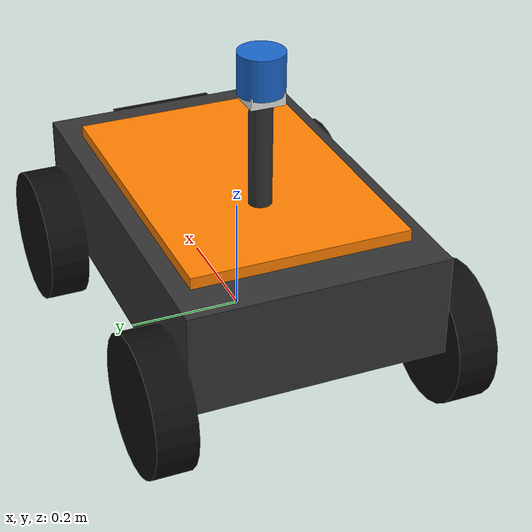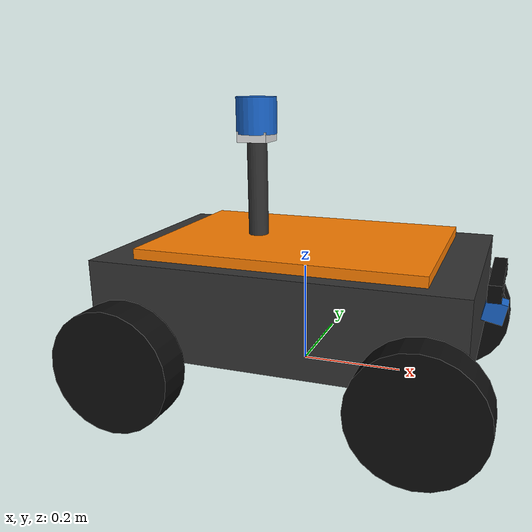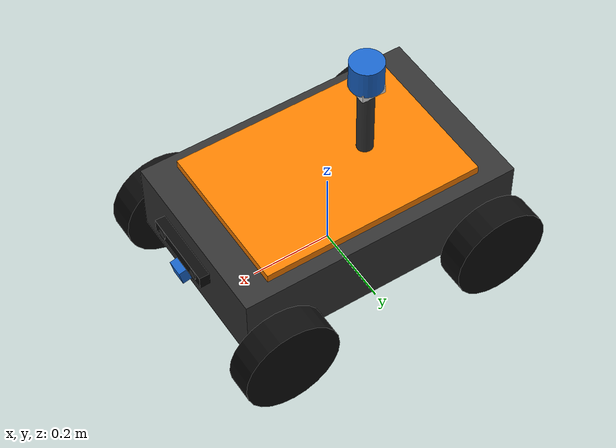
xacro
<?xml version="1.0"?>
<robot name="robot" xmlns:xacro="http://www.ros.org/wiki/xacro">

  <!-- ═══════════════════════════════════════════
       MATERIALS
  ═══════════════════════════════════════════ -->
  <material name="dark_grey"><color rgba="0.2 0.2 0.2 1"/></material>
  <material name="orange">   <color rgba="1.0 0.5 0.0 1"/></material>
  <material name="black">    <color rgba="0.05 0.05 0.05 1"/></material>
  <material name="white">    <color rgba="0.9 0.9 0.9 1"/></material>
  <material name="blue">     <color rgba="0.1 0.4 0.8 1"/></material>
  <material name="green">    <color rgba="0.1 0.8 0.1 1"/></material>

  <!-- ═══════════════════════════════════════════
       BASE
       base_footprint  →  base_link (body box)
  ═══════════════════════════════════════════ -->
  <link name="base_footprint"/>

  <joint name="base_joint" type="fixed">
    <parent link="base_footprint"/>
    <child  link="base_link"/>
    <origin xyz="0 0 0.15" rpy="0 0 0"/>
  </joint>

  <link name="base_link">
    <visual>
      <geometry><box size="0.7 0.45 0.18"/></geometry>
      <material name="dark_grey"/>
    </visual>
    <collision>
      <geometry><box size="0.7 0.45 0.18"/></geometry>
    </collision>
    <inertial>
      <mass value="15"/>
      <origin xyz="0 0 0" rpy="0 0 0"/>
      <inertia ixx="0.3" iyy="0.5" izz="0.6"
               ixy="0"   ixz="0"   iyz="0"/>
    </inertial>
  </link>

  <!-- orange top panel (visual only) -->
  <link name="top_panel">
    <visual>
      <geometry><box size="0.55 0.38 0.02"/></geometry>
      <material name="orange"/>
    </visual>
    <inertial>
      <mass value="0.5"/>
      <origin xyz="0 0 0" rpy="0 0 0"/>
      <inertia ixx="0.01" iyy="0.01" izz="0.01"
               ixy="0"    ixz="0"    iyz="0"/>
    </inertial>
  </link>
  <joint name="top_panel_joint" type="fixed">
    <parent link="base_link"/>
    <child  link="top_panel"/>
    <origin xyz="0 0 0.1" rpy="0 0 0"/>
  </joint>

  <!-- vertical mast (lidar + gps sit on top) -->
  <link name="mast_link">
    <visual>
      <geometry><cylinder radius="0.02" length="0.25"/></geometry>
      <material name="dark_grey"/>
    </visual>
    <collision>
      <geometry><cylinder radius="0.02" length="0.25"/></geometry>
    </collision>
    <inertial>
      <mass value="0.3"/>
      <origin xyz="0 0 0" rpy="0 0 0"/>
      <inertia ixx="0.001" iyy="0.001" izz="0.001"
               ixy="0"     ixz="0"     iyz="0"/>
    </inertial>
  </link>
  <joint name="mast_joint" type="fixed">
    <parent link="base_link"/>
    <child  link="mast_link"/>
    <origin xyz="-0.1 0 0.215" rpy="0 0 0"/>
  </joint>

  <xacro:macro name="wheel" params="name x y">

    <link name="${name}">
      <visual>
        <origin xyz="0 0 0" rpy="1.5707 0 0"/>
        <geometry><cylinder radius="0.12" length="0.07"/></geometry>
        <material name="black"/>
      </visual>
      <collision>
        <origin xyz="0 0 0" rpy="1.5707 0 0"/>
        <geometry><cylinder radius="0.12" length="0.07"/></geometry>
      </collision>
      <inertial>
        <mass value="1.5"/>
        <origin xyz="0 0 0" rpy="0 0 0"/>
        <inertia ixx="0.012" iyy="0.012" izz="0.021"
                 ixy="0"     ixz="0"     iyz="0"/>
      </inertial>
    </link>

    <joint name="${name}_joint" type="continuous">
      <parent link="base_link"/>
      <child  link="${name}"/>
      <origin xyz="${x} ${y} -0.1" rpy="0 0 0"/>
      <axis xyz="0 1 0"/>
      <dynamics damping="0.05" friction="0.0"/>
    </joint>

    <!-- Gazebo friction / contact for this wheel -->
    <gazebo reference="${name}">
      <mu1>1.5</mu1>
      <mu2>1.5</mu2>
      <kp>1e6</kp>
      <kd>10.0</kd>
      <minDepth>0.001</minDepth>
      <material>Gazebo/DarkGrey</material>
    </gazebo>

  </xacro:macro>

  <!-- Instantiate all 4 wheels -->
  <xacro:wheel name="front_left_wheel"  x=" 0.28" y=" 0.26"/>
  <xacro:wheel name="front_right_wheel" x=" 0.28" y="-0.26"/>
  <xacro:wheel name="rear_left_wheel"   x="-0.28" y=" 0.26"/>
  <xacro:wheel name="rear_right_wheel"  x="-0.28" y="-0.26"/>

  <!-- ═══════════════════════════════════════════
       LIDAR
  ═══════════════════════════════════════════ -->
  <link name="lidar_link">
    <visual>
      <geometry><cylinder radius="0.04" length="0.07"/></geometry>
      <material name="blue"/>
    </visual>
    <collision>
      <geometry><cylinder radius="0.04" length="0.07"/></geometry>
    </collision>
    <inertial>
      <mass value="0.2"/>
      <origin xyz="0 0 0" rpy="0 0 0"/>
      <inertia ixx="0.001" iyy="0.001" izz="0.001"
               ixy="0"     ixz="0"     iyz="0"/>
    </inertial>
  </link>
  <joint name="lidar_joint" type="fixed">
    <parent link="mast_link"/>
    <child  link="lidar_link"/>
    <origin xyz="0 0 0.13" rpy="0 0 0"/>
  </joint>

  <gazebo reference="lidar_link">
    <sensor type="ray" name="lidar_sensor">
      <always_on>true</always_on>
      <visualize>false</visualize>
      <update_rate>10</update_rate>
      <ray>
        <scan>
          <horizontal>
            <samples>360</samples>
            <resolution>1</resolution>
            <min_angle>-3.14159</min_angle>
            <max_angle> 3.14159</max_angle>
          </horizontal>
        </scan>
        <range>
          <min>0.15</min><max>15.0</max>
          <resolution>0.01</resolution>
        </range>
        <noise>
          <type>gaussian</type>
          <mean>0.0</mean><stddev>0.01</stddev>
        </noise>
      </ray>
      <plugin name="lidar_plugin"
              filename="libgazebo_ros_ray_sensor.so">
        <ros>
          <remapping>~/out:=/scan</remapping>
        </ros>
        <output_type>sensor_msgs/LaserScan</output_type>
        <frame_name>lidar_link</frame_name>
      </plugin>
    </sensor>
  </gazebo>

  <!-- ═══════════════════════════════════════════
       IMU
  ═══════════════════════════════════════════ -->
  <link name="imu_link">
    <visual>
      <geometry><box size="0.04 0.04 0.01"/></geometry>
      <material name="green"/>
    </visual>
    <collision>
      <geometry><box size="0.04 0.04 0.01"/></geometry>
    </collision>
    <inertial>
      <mass value="0.05"/>
      <origin xyz="0 0 0" rpy="0 0 0"/>
      <inertia ixx="0.0001" iyy="0.0001" izz="0.0001"
               ixy="0"      ixz="0"      iyz="0"/>
    </inertial>
  </link>
  <joint name="imu_joint" type="fixed">
    <parent link="base_link"/>
    <child  link="imu_link"/>
    <origin xyz="0 0 0.05" rpy="0 0 0"/>
  </joint>

  <gazebo reference="imu_link">
    <sensor name="imu_sensor" type="imu">
      <always_on>true</always_on>
      <update_rate>100</update_rate>
      <plugin name="imu_plugin"
              filename="libgazebo_ros_imu_sensor.so">
        <ros>
          <remapping>~/out:=/imu/data</remapping>
        </ros>
        <initial_orientation_as_reference>false
        </initial_orientation_as_reference>
        <frame_name>imu_link</frame_name>
      </plugin>
    </sensor>
  </gazebo>

  <!-- ═══════════════════════════════════════════
       GPS
  ═══════════════════════════════════════════ -->
  <link name="gps_link">
    <visual>
      <geometry><box size="0.06 0.06 0.02"/></geometry>
      <material name="white"/>
    </visual>
    <collision>
      <geometry><box size="0.06 0.06 0.02"/></geometry>
    </collision>
    <inertial>
      <mass value="0.1"/>
      <origin xyz="0 0 0" rpy="0 0 0"/>
      <inertia ixx="0.0001" iyy="0.0001" izz="0.0001"
               ixy="0"      ixz="0"      iyz="0"/>
    </inertial>
  </link>
  <joint name="gps_joint" type="fixed">
    <parent link="mast_link"/>
    <child  link="gps_link"/>
    <origin xyz="0 0 0.09" rpy="0 0 0"/>
  </joint>

  <gazebo reference="gps_link">
    <sensor name="gps_sensor" type="gps">
      <always_on>true</always_on>
      <update_rate>1</update_rate>
      <plugin name="gps_plugin"
              filename="libgazebo_ros_gps_sensor.so">
        <ros>
          <remapping>~/out:=/gps/fix</remapping>
        </ros>
        <frame_name>gps_link</frame_name>
      </plugin>
    </sensor>
  </gazebo>

  <!-- ═══════════════════════════════════════════
       STEREO CAMERAS
  ═══════════════════════════════════════════ -->
  <link name="stereo_bar_link">
    <visual>
      <geometry><box size="0.025 0.19 0.032"/></geometry>
      <material name="black"/>
    </visual>
    <collision>
      <geometry><box size="0.05 0.22 0.05"/></geometry>
    </collision>
    <inertial>
      <mass value="0.15"/>
      <origin xyz="0 0 0" rpy="0 0 0"/>
      <inertia ixx="0.001" iyy="0.001" izz="0.001"
               ixy="0"     ixz="0"     iyz="0"/>
    </inertial>
  </link>
  <joint name="stereo_bar_joint" type="fixed">
    <parent link="base_link"/>
    <child  link="stereo_bar_link"/>
    <origin xyz="0.375 0 0.06" rpy="0 0 0"/>
  </joint>

  <link name="left_camera_link">
    <visual>
      <origin xyz="0.013 0 0" rpy="0 1.5707 0"/>
      <geometry><cylinder radius="0.013" length="0.002"/></geometry>
      <material name="dark_grey"/>
    </visual>
    <collision>
      <origin xyz="0.013 0 0" rpy="0 1.5707 0"/>
      <geometry><cylinder radius="0.013" length="0.002"/></geometry>
    </collision>
    <inertial>
      <mass value="0.02"/>
      <origin xyz="0 0 0" rpy="0 0 0"/>
      <inertia ixx="0.0001" iyy="0.0001" izz="0.0001"
               ixy="0"      ixz="0"      iyz="0"/>
    </inertial>
  </link>
  <joint name="left_camera_joint" type="fixed">
    <parent link="stereo_bar_link"/>
    <child  link="left_camera_link"/>
    <origin xyz="0 0.065 0" rpy="0 0 0"/>
  </joint>

  <link name="right_camera_link">
    <visual>
      <origin xyz="0.013 0 0" rpy="0 1.5707 0"/>
      <geometry><cylinder radius="0.013" length="0.002"/></geometry>
      <material name="dark_grey"/>
    </visual>
    <collision>
      <origin xyz="0.013 0 0" rpy="0 1.5707 0"/>
      <geometry><cylinder radius="0.013" length="0.002"/></geometry>
    </collision>
    <inertial>
      <mass value="0.02"/>
      <origin xyz="0 0 0" rpy="0 0 0"/>
      <inertia ixx="0.0001" iyy="0.0001" izz="0.0001"
               ixy="0"      ixz="0"      iyz="0"/>
    </inertial>
  </link>
  <joint name="right_camera_joint" type="fixed">
    <parent link="stereo_bar_link"/>
    <child  link="right_camera_link"/>
    <origin xyz="0 -0.065 0" rpy="0 0 0"/>
  </joint>

  <gazebo reference="left_camera_link">
    <sensor type="camera" name="left_camera">
      <always_on>true</always_on>
      <update_rate>15</update_rate>
      <camera>
        <horizontal_fov>1.8</horizontal_fov>
        <image>
          <width>1280</width><height>720</height>
          <format>R8G8B8</format>
        </image>
        <clip><near>0.1</near><far>100</far></clip>
      </camera>
      <plugin name="left_camera_plugin"
              filename="libgazebo_ros_camera.so">
        <ros>
          <remapping>image_raw:=/stereo/left/image_raw</remapping>
          <remapping>camera_info:=/stereo/left/camera_info</remapping>
        </ros>
        <frame_name>left_camera_link</frame_name>
      </plugin>
    </sensor>
  </gazebo>

  <gazebo reference="right_camera_link">
    <sensor type="camera" name="right_camera">
      <always_on>true</always_on>
      <update_rate>15</update_rate>
      <camera>
        <horizontal_fov>1.8</horizontal_fov>
        <image>
          <width>1280</width><height>720</height>
          <format>R8G8B8</format>
        </image>
        <clip><near>0.1</near><far>100</far></clip>
      </camera>
      <plugin name="right_camera_plugin"
              filename="libgazebo_ros_camera.so">
        <ros>
          <remapping>image_raw:=/stereo/right/image_raw</remapping>
          <remapping>camera_info:=/stereo/right/camera_info</remapping>
        </ros>
        <frame_name>right_camera_link</frame_name>
      </plugin>
    </sensor>
  </gazebo>

  <!-- ═══════════════════════════════════════════
       MONO FRONT CAMERA
  ═══════════════════════════════════════════ -->
  <link name="camera_link">
    <visual>
      <geometry><box size="0.04 0.04 0.04"/></geometry>
      <material name="blue"/>
    </visual>
    <collision>
      <geometry><box size="0.04 0.04 0.04"/></geometry>
    </collision>
    <inertial>
      <mass value="0.1"/>
      <origin xyz="0 0 0" rpy="0 0 0"/>
      <inertia ixx="0.001" iyy="0.001" izz="0.001"
               ixy="0"     ixz="0"     iyz="0"/>
    </inertial>
  </link>
  <joint name="camera_joint" type="fixed">
    <parent link="base_link"/>
    <child  link="camera_link"/>
    <origin xyz="0.375 0 0.0" rpy="0 0.2 0"/>
  </joint>

  <gazebo reference="camera_link">
    <sensor type="camera" name="front_camera">
      <always_on>true</always_on>
      <update_rate>30</update_rate>
      <camera>
        <horizontal_fov>1.396</horizontal_fov>
        <image>
          <width>640</width><height>480</height>
          <format>R8G8B8</format>
        </image>
        <clip><near>0.05</near><far>100</far></clip>
        <noise>
          <type>gaussian</type>
          <mean>0</mean><stddev>0.005</stddev>
        </noise>
      </camera>
      <plugin name="camera_plugin"
              filename="libgazebo_ros_camera.so">
        <ros>
          <remapping>image_raw:=/camera/image_raw</remapping>
          <remapping>camera_info:=/camera/camera_info</remapping>
        </ros>
        <frame_name>camera_link</frame_name>
      </plugin>
    </sensor>
  </gazebo>

  <!-- ═══════════════════════════════════════════
       DIFF DRIVE  ← THE MOVEMENT PLUGIN
       num_wheel_pairs = 2  tells the plugin
        ═══════════════════════════════════════════ -->
  <gazebo>
    <plugin name="diff_drive"
            filename="libgazebo_ros_diff_drive.so">
      <ros>
        <remapping>cmd_vel:=/cmd_vel</remapping>
        <remapping>odom:=/odom</remapping>
      </ros>
      <num_wheel_pairs>2</num_wheel_pairs>
      <left_joint>front_left_wheel_joint</left_joint>
      <left_joint>rear_left_wheel_joint</left_joint>
      <right_joint>front_right_wheel_joint</right_joint>
      <right_joint>rear_right_wheel_joint</right_joint>
      <wheel_separation>0.52</wheel_separation>
      <wheel_diameter>0.24</wheel_diameter>
      <max_wheel_torque>50.0</max_wheel_torque>
      <max_wheel_acceleration>2.0</max_wheel_acceleration>
      <publish_odom>true</publish_odom>
      <publish_odom_tf>true</publish_odom_tf>
      <odometry_frame>odom</odometry_frame>
      <robot_base_frame>base_link</robot_base_frame>
    </plugin>
  </gazebo>

  <!-- ═══════════════════════════════════════════
       JOINT STATE PUBLISHER
       Broadcasts wheel angles to /joint_states
  ═══════════════════════════════════════════ -->
  <gazebo>
    <plugin name="joint_state_publisher"
            filename="libgazebo_ros_joint_state_publisher.so">
      <update_rate>50</update_rate>
      <joint_name>front_left_wheel_joint</joint_name>
      <joint_name>front_right_wheel_joint</joint_name>
      <joint_name>rear_left_wheel_joint</joint_name>
      <joint_name>rear_right_wheel_joint</joint_name>
    </plugin>
  </gazebo>

</robot>
